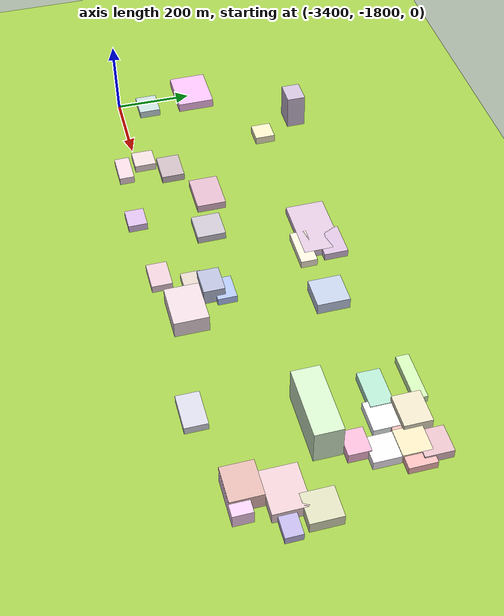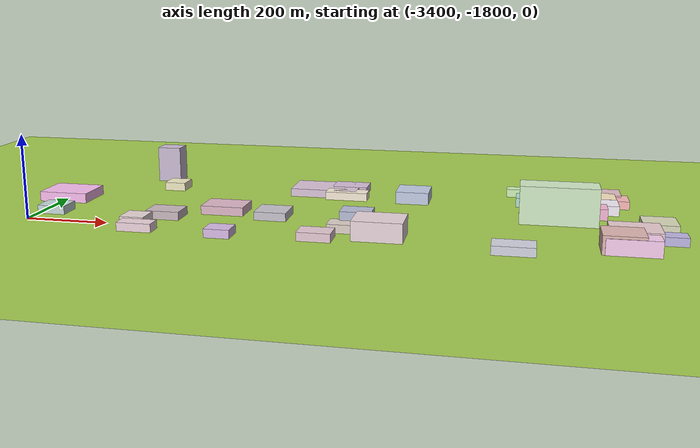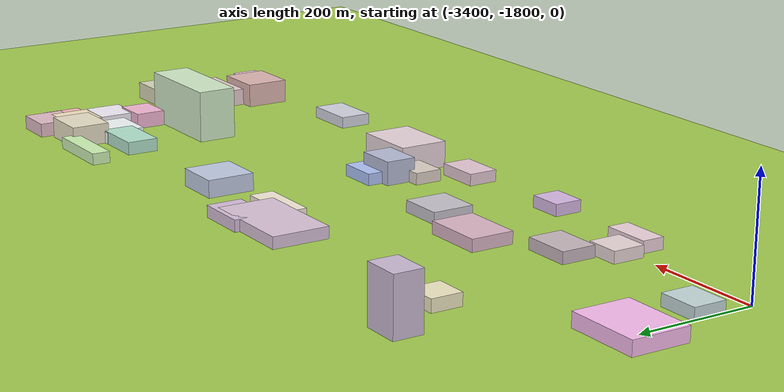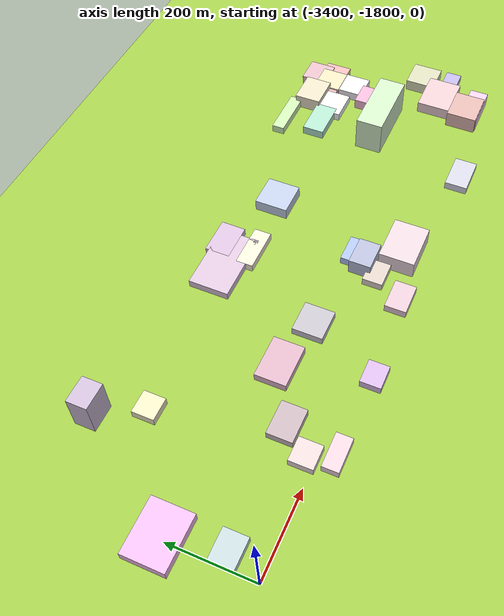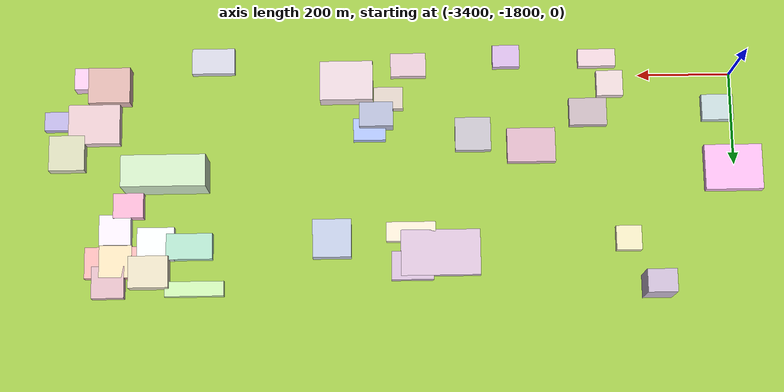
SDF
<sdf version="1.9">
 <world name="city_map">
  <model name="ground_plane">
   <static>1</static>
   <link name="link">
    <collision name="collision">
     <geometry><plane><normal>0 0 1</normal><size>11000 11000</size></plane></geometry>
    </collision>
    <visual name="visual">
     <geometry><plane><normal>0 0 1</normal><size>11000 11000</size></plane></geometry>
     <material>
      <ambient>0.551 0.712 0.210 1</ambient>
      <diffuse>0.651 0.812 0.310 1</diffuse>
      <specular>0.1 0.1 0.05 1</specular>
     </material>
    </visual>
   </link>
  </model>
  <model name="building_916570809">
   <static>1</static>
   <pose>-2763.185209973653 -1413.792203624471 10.0 0 0 0</pose>
   <link name="link">
    <collision name="collision">
     <geometry><box><size>169.5525000001865 97.91643936784145 20</size></box></geometry>
    </collision>
    <visual name="visual">
     <cast_shadows>false</cast_shadows>
     <geometry><box><size>169.5525000001865 97.91643936784145 20</size></box></geometry>
     <material>
      <ambient>0.775 0.683 0.771 1</ambient>
      <diffuse>0.875 0.783 0.871 1</diffuse>
      <specular>0.262 0.235 0.261 1</specular>
      <emissive>0.01 0.01 0.01 1</emissive>
     </material>
    </visual>
   </link>
  </model>
  <model name="building_678074171">
   <static>1</static>
   <pose>-2180.099157826956 -1585.6578494850173 45.0 0 0 0</pose>
   <link name="link">
    <collision name="collision">
     <geometry><box><size>178.74330000032757 67.90106861911882 90.0</size></box></geometry>
    </collision>
    <visual name="visual">
     <cast_shadows>false</cast_shadows>
     <geometry><box><size>178.74330000032757 67.90106861911882 90.0</size></box></geometry>
     <material>
      <ambient>0.739 0.842 0.698 1</ambient>
      <diffuse>0.839 0.942 0.798 1</diffuse>
      <specular>0.252 0.283 0.239 1</specular>
      <emissive>0.01 0.01 0.01 1</emissive>
     </material>
    </visual>
   </link>
  </model>
  <model name="building_732518532">
   <static>1</static>
   <pose>-3395.6030817666274 -1589.0654685565828 12.0 0 0 0</pose>
   <link name="link">
    <collision name="collision">
     <geometry><box><size>123.65551394359335 97.87980000021435 24.0</size></box></geometry>
    </collision>
    <visual name="visual">
     <cast_shadows>false</cast_shadows>
     <geometry><box><size>123.65551394359335 97.87980000021435 24.0</size></box></geometry>
     <material>
      <ambient>0.896 0.656 0.855 1</ambient>
      <diffuse>0.996 0.756 0.955 1</diffuse>
      <specular>0.299 0.227 0.287 1</specular>
      <emissive>0.01 0.01 0.01 1</emissive>
     </material>
    </visual>
   </link>
  </model>
  <model name="building_123817123">
   <static>1</static>
   <pose>-2090.679912394041 -1401.6782501234009 10.0 0 0 0</pose>
   <link name="link">
    <collision name="collision">
     <geometry><box><size>168.49800000048276 66.93280965089853 20</size></box></geometry>
    </collision>
    <visual name="visual">
     <cast_shadows>false</cast_shadows>
     <geometry><box><size>168.49800000048276 66.93280965089853 20</size></box></geometry>
     <material>
      <ambient>0.894 0.641 0.638 1</ambient>
      <diffuse>0.994 0.741 0.738 1</diffuse>
      <specular>0.298 0.222 0.222 1</specular>
      <emissive>0.01 0.01 0.01 1</emissive>
     </material>
    </visual>
   </link>
  </model>
  <model name="building_702693433">
   <static>1</static>
   <pose>-2566.1914712444086 -1787.3159141345893 22.5 0 0 0</pose>
   <link name="link">
    <collision name="collision">
     <geometry><box><size>113.79719999930415 85.56619863056683 45.0</size></box></geometry>
    </collision>
    <visual name="visual">
     <cast_shadows>false</cast_shadows>
     <geometry><box><size>113.79719999930415 85.56619863056683 45.0</size></box></geometry>
     <material>
      <ambient>0.829 0.756 0.780 1</ambient>
      <diffuse>0.929 0.856 0.880 1</diffuse>
      <specular>0.279 0.257 0.264 1</specular>
      <emissive>0.01 0.01 0.01 1</emissive>
     </material>
    </visual>
   </link>
  </model>
  <model name="building_30193992">
   <static>1</static>
   <pose>-2022.3991740174558 -1701.6657354087788 15.0 0 0 0</pose>
   <link name="link">
    <collision name="collision">
     <geometry><box><size>110.61149999993347 85.95659585977337 30.0</size></box></geometry>
    </collision>
    <visual name="visual">
     <cast_shadows>false</cast_shadows>
     <geometry><box><size>110.61149999993347 85.95659585977337 30.0</size></box></geometry>
     <material>
      <ambient>0.830 0.716 0.732 1</ambient>
      <diffuse>0.930 0.816 0.832 1</diffuse>
      <specular>0.279 0.245 0.250 1</specular>
      <emissive>0.01 0.01 0.01 1</emissive>
     </material>
    </visual>
   </link>
  </model>
  <model name="building_358701429">
   <static>1</static>
   <pose>-2962.48862184741 -1644.5084720194768 10.5 0 0 0</pose>
   <link name="link">
    <collision name="collision">
     <geometry><box><size>103.78586872930738 74.458800000194 21.0</size></box></geometry>
    </collision>
    <visual name="visual">
     <cast_shadows>false</cast_shadows>
     <geometry><box><size>103.78586872930738 74.458800000194 21.0</size></box></geometry>
     <material>
      <ambient>0.782 0.630 0.693 1</ambient>
      <diffuse>0.882 0.730 0.793 1</diffuse>
      <specular>0.265 0.219 0.238 1</specular>
      <emissive>0.01 0.01 0.01 1</emissive>
     </material>
    </visual>
   </link>
  </model>
  <model name="building_476492248">
   <static>1</static>
   <pose>-2055.2991965179094 -1784.80353456211 21.0 0 0 0</pose>
   <link name="link">
    <collision name="collision">
     <geometry><box><size>89.53259999967855 77.13384003926127 42.0</size></box></geometry>
    </collision>
    <visual name="visual">
     <cast_shadows>false</cast_shadows>
     <geometry><box><size>89.53259999967855 77.13384003926127 42.0</size></box></geometry>
     <material>
      <ambient>0.792 0.629 0.607 1</ambient>
      <diffuse>0.892 0.729 0.707 1</diffuse>
      <specular>0.268 0.219 0.212 1</specular>
      <emissive>0.01 0.01 0.01 1</emissive>
     </material>
    </visual>
   </link>
  </model>
  <model name="building_484385181">
   <static>1</static>
   <pose>-2532.1843964126892 -1446.01324356454 15.0 0 0 0</pose>
   <link name="link">
    <collision name="collision">
     <geometry><box><size>82.0845000001853 81.85787047836386 30.0</size></box></geometry>
    </collision>
    <visual name="visual">
     <cast_shadows>false</cast_shadows>
     <geometry><box><size>82.0845000001853 81.85787047836386 30.0</size></box></geometry>
     <material>
      <ambient>0.673 0.715 0.809 1</ambient>
      <diffuse>0.773 0.815 0.909 1</diffuse>
      <specular>0.232 0.244 0.273 1</specular>
      <emissive>0.01 0.01 0.01 1</emissive>
     </material>
    </visual>
   </link>
  </model>
  <model name="building_143862770">
   <static>1</static>
   <pose>-1964.6781267011413 -1639.1702259771448 15.0 0 0 0</pose>
   <link name="link">
    <collision name="collision">
     <geometry><box><size>76.39020000068086 76.31385545373412 30.0</size></box></geometry>
    </collision>
    <visual name="visual">
     <cast_shadows>false</cast_shadows>
     <geometry><box><size>76.39020000068086 76.31385545373412 30.0</size></box></geometry>
     <material>
      <ambient>0.768 0.771 0.646 1</ambient>
      <diffuse>0.868 0.871 0.746 1</diffuse>
      <specular>0.260 0.261 0.224 1</specular>
      <emissive>0.01 0.01 0.01 1</emissive>
     </material>
    </visual>
   </link>
  </model>
  <model name="building_924618336">
   <static>1</static>
   <pose>-2143.733008949915 -1378.8610123893686 18.0 0 0 0</pose>
   <link name="link">
    <collision name="collision">
     <geometry><box><size>84.47826472248983 67.68779999993768 36.0</size></box></geometry>
    </collision>
    <visual name="visual">
     <cast_shadows>false</cast_shadows>
     <geometry><box><size>84.47826472248983 67.68779999993768 36.0</size></box></geometry>
     <material>
      <ambient>0.829 0.793 0.692 1</ambient>
      <diffuse>0.929 0.893 0.792 1</diffuse>
      <specular>0.279 0.268 0.238 1</specular>
      <emissive>0.01 0.01 0.01 1</emissive>
     </material>
    </visual>
   </link>
  </model>
  <model name="building_706960398">
   <static>1</static>
   <pose>-2837.494445981347 -1670.8522051327654 10.0 0 0 0</pose>
   <link name="link">
    <collision name="collision">
     <geometry><box><size>76.80089999995943 72.56479748220377 20</size></box></geometry>
    </collision>
    <visual name="visual">
     <cast_shadows>false</cast_shadows>
     <geometry><box><size>76.80089999995943 72.56479748220377 20</size></box></geometry>
     <material>
      <ambient>0.694 0.675 0.711 1</ambient>
      <diffuse>0.794 0.775 0.811 1</diffuse>
      <specular>0.238 0.232 0.243 1</specular>
      <emissive>0.01 0.01 0.01 1</emissive>
     </material>
    </visual>
   </link>
  </model>
  <model name="building_183841092">
   <static>1</static>
   <pose>-2156.8112996989053 -1440.5496832499439 10.5 0 0 0</pose>
   <link name="link">
    <collision name="collision">
     <geometry><box><size>79.00979999974567 70.42655605439312 21.0</size></box></geometry>
    </collision>
    <visual name="visual">
     <cast_shadows>false</cast_shadows>
     <geometry><box><size>79.00979999974567 70.42655605439312 21.0</size></box></geometry>
     <material>
      <ambient>0.875 0.896 0.899 1</ambient>
      <diffuse>0.975 0.996 0.999 1</diffuse>
      <specular>0.292 0.299 0.300 1</specular>
      <emissive>0.01 0.01 0.01 1</emissive>
     </material>
    </visual>
   </link>
  </model>
  <model name="building_3770503">
   <static>1</static>
   <pose>-2228.7291099106933 -1433.9382687801124 11.234582156804525 0 0 0</pose>
   <link name="link">
    <collision name="collision">
     <geometry><box><size>98.5680000003697 55.2520171775012 22.46916431360905</size></box></geometry>
    </collision>
    <visual name="visual">
     <cast_shadows>false</cast_shadows>
     <geometry><box><size>98.5680000003697 55.2520171775012 22.46916431360905</size></box></geometry>
     <material>
      <ambient>0.614 0.804 0.719 1</ambient>
      <diffuse>0.714 0.904 0.819 1</diffuse>
      <specular>0.214 0.271 0.246 1</specular>
      <emissive>0.01 0.01 0.01 1</emissive>
     </material>
    </visual>
   </link>
  </model>
  <model name="building_335801725">
   <static>1</static>
   <pose>-2702.9075903987077 -1386.5013547929682 10.0 0 0 0</pose>
   <link name="link">
    <collision name="collision">
     <geometry><box><size>89.35499999996921 60.64270263967063 20</size></box></geometry>
    </collision>
    <visual name="visual">
     <cast_shadows>false</cast_shadows>
     <geometry><box><size>89.35499999996921 60.64270263967063 20</size></box></geometry>
     <material>
      <ambient>0.761 0.663 0.773 1</ambient>
      <diffuse>0.861 0.763 0.873 1</diffuse>
      <specular>0.258 0.229 0.262 1</specular>
      <emissive>0.01 0.01 0.01 1</emissive>
     </material>
    </visual>
   </link>
  </model>
  <model name="building_576231843">
   <static>1</static>
   <pose>-2036.5404577523661 -1801.2715513339133 18.0 0 0 0</pose>
   <link name="link">
    <collision name="collision">
     <geometry><box><size>114.01919999953236 46.979092058205175 36.0</size></box></geometry>
    </collision>
    <visual name="visual">
     <cast_shadows>false</cast_shadows>
     <geometry><box><size>114.01919999953236 46.979092058205175 36.0</size></box></geometry>
     <material>
      <ambient>0.888 0.718 0.851 1</ambient>
      <diffuse>0.988 0.818 0.951 1</diffuse>
      <specular>0.296 0.245 0.285 1</specular>
      <emissive>0.01 0.01 0.01 1</emissive>
     </material>
    </visual>
   </link>
  </model>
  <model name="building_239655193">
   <static>1</static>
   <pose>-2277.0466887041603 -1841.0686624120974 10.0 0 0 0</pose>
   <link name="link">
    <collision name="collision">
     <geometry><box><size>92.20883872703453 55.57770000038431 20</size></box></geometry>
    </collision>
    <visual name="visual">
     <cast_shadows>false</cast_shadows>
     <geometry><box><size>92.20883872703453 55.57770000038431 20</size></box></geometry>
     <material>
      <ambient>0.750 0.749 0.806 1</ambient>
      <diffuse>0.850 0.849 0.906 1</diffuse>
      <specular>0.255 0.255 0.272 1</specular>
      <emissive>0.01 0.01 0.01 1</emissive>
     </material>
    </visual>
   </link>
  </model>
  <model name="building_588970818">
   <static>1</static>
   <pose>-3087.213294062979 -1716.6815668267488 10.0 0 0 0</pose>
   <link name="link">
    <collision name="collision">
     <geometry><box><size>80.94337605241712 59.729099999998425 20</size></box></geometry>
    </collision>
    <visual name="visual">
     <cast_shadows>false</cast_shadows>
     <geometry><box><size>80.94337605241712 59.729099999998425 20</size></box></geometry>
     <material>
      <ambient>0.700 0.632 0.660 1</ambient>
      <diffuse>0.800 0.732 0.760 1</diffuse>
      <specular>0.240 0.220 0.228 1</specular>
      <emissive>0.01 0.01 0.01 1</emissive>
     </material>
    </visual>
   </link>
  </model>
  <model name="building_309502335">
   <static>1</static>
   <pose>-2072.356639383837 -1403.5004395801975 12.0 0 0 0</pose>
   <link name="link">
    <collision name="collision">
     <geometry><box><size>69.16409999983841 68.54091178756636 24.0</size></box></geometry>
    </collision>
    <visual name="visual">
     <cast_shadows>false</cast_shadows>
     <geometry><box><size>69.16409999983841 68.54091178756636 24.0</size></box></geometry>
     <material>
      <ambient>0.895 0.811 0.664 1</ambient>
      <diffuse>0.995 0.911 0.764 1</diffuse>
      <specular>0.299 0.273 0.229 1</specular>
      <emissive>0.01 0.01 0.01 1</emissive>
     </material>
    </visual>
   </link>
  </model>
  <model name="building_534269097">
   <static>1</static>
   <pose>-2057.109111771861 -1359.481351648256 12.0 0 0 0</pose>
   <link name="link">
    <collision name="collision">
     <geometry><box><size>69.18629999930914 68.38462186841338 24.0</size></box></geometry>
    </collision>
    <visual name="visual">
     <cast_shadows>false</cast_shadows>
     <geometry><box><size>69.18629999930914 68.38462186841338 24.0</size></box></geometry>
     <material>
      <ambient>0.805 0.656 0.692 1</ambient>
      <diffuse>0.905 0.756 0.792 1</diffuse>
      <specular>0.271 0.227 0.238 1</specular>
      <emissive>0.01 0.01 0.01 1</emissive>
     </material>
    </visual>
   </link>
  </model>
  <model name="building_219699486">
   <static>1</static>
   <pose>-2070.5213779512196 -1471.206740463376 12.0 0 0 0</pose>
   <link name="link">
    <collision name="collision">
     <geometry><box><size>67.86539999964702 65.25153250677045 24.0</size></box></geometry>
    </collision>
    <visual name="visual">
     <cast_shadows>false</cast_shadows>
     <geometry><box><size>67.86539999964702 65.25153250677045 24.0</size></box></geometry>
     <material>
      <ambient>0.879 0.851 0.894 1</ambient>
      <diffuse>0.979 0.951 0.994 1</diffuse>
      <specular>0.294 0.285 0.298 1</specular>
      <emissive>0.01 0.01 0.01 1</emissive>
     </material>
    </visual>
   </link>
  </model>
  <model name="building_134850002">
   <static>1</static>
   <pose>-2700.39989928988 -1459.5468310351669 10.0 0 0 0</pose>
   <link name="link">
    <collision name="collision">
     <geometry><box><size>105.02506185412908 41.64720000006383 20</size></box></geometry>
    </collision>
    <visual name="visual">
     <cast_shadows>false</cast_shadows>
     <geometry><box><size>105.02506185412908 41.64720000006383 20</size></box></geometry>
     <material>
      <ambient>0.887 0.838 0.757 1</ambient>
      <diffuse>0.987 0.938 0.857 1</diffuse>
      <specular>0.296 0.281 0.257 1</specular>
      <emissive>0.01 0.01 0.01 1</emissive>
     </material>
    </visual>
   </link>
  </model>
  <model name="building_156004372">
   <static>1</static>
   <pose>-2239.5710199428877 -1343.4217235163046 10.0 0 0 0</pose>
   <link name="link">
    <collision name="collision">
     <geometry><box><size>125.92949999990566 31.57766806020417 20</size></box></geometry>
    </collision>
    <visual name="visual">
     <cast_shadows>false</cast_shadows>
     <geometry><box><size>125.92949999990566 31.57766806020417 20</size></box></geometry>
     <material>
      <ambient>0.724 0.869 0.625 1</ambient>
      <diffuse>0.824 0.969 0.725 1</diffuse>
      <specular>0.247 0.291 0.218 1</specular>
      <emissive>0.01 0.01 0.01 1</emissive>
     </material>
    </visual>
   </link>
  </model>
  <model name="building_408723254">
   <static>1</static>
   <pose>-2700.0135094778825 -1826.671094964904 10.0 0 0 0</pose>
   <link name="link">
    <collision name="collision">
     <geometry><box><size>76.43459999962232 51.37114029870402 20</size></box></geometry>
    </collision>
    <visual name="visual">
     <cast_shadows>false</cast_shadows>
     <geometry><box><size>76.43459999962232 51.37114029870402 20</size></box></geometry>
     <material>
      <ambient>0.819 0.706 0.749 1</ambient>
      <diffuse>0.919 0.806 0.849 1</diffuse>
      <specular>0.276 0.242 0.255 1</specular>
      <emissive>0.01 0.01 0.01 1</emissive>
     </material>
    </visual>
   </link>
  </model>
  <model name="building_934895855">
   <static>1</static>
   <pose>-2629.5603401470357 -1712.9399863808974 20.239348406298276 0 0 0</pose>
   <link name="link">
    <collision name="collision">
     <geometry><box><size>72.58556772886928 53.12460000011043 40.47869681259655</size></box></geometry>
    </collision>
    <visual name="visual">
     <cast_shadows>false</cast_shadows>
     <geometry><box><size>72.58556772886928 53.12460000011043 40.47869681259655</size></box></geometry>
     <material>
      <ambient>0.631 0.652 0.754 1</ambient>
      <diffuse>0.731 0.752 0.854 1</diffuse>
      <specular>0.219 0.226 0.256 1</specular>
      <emissive>0.01 0.01 0.01 1</emissive>
     </material>
    </visual>
   </link>
  </model>
  <model name="building_493353606">
   <static>1</static>
   <pose>-3367.7437743038845 -1722.199606454562 10.0 0 0 0</pose>
   <link name="link">
    <collision name="collision">
     <geometry><box><size>67.81567898281754 56.09940000017133 20</size></box></geometry>
    </collision>
    <visual name="visual">
     <cast_shadows>false</cast_shadows>
     <geometry><box><size>67.81567898281754 56.09940000017133 20</size></box></geometry>
     <material>
      <ambient>0.691 0.764 0.771 1</ambient>
      <diffuse>0.791 0.864 0.871 1</diffuse>
      <specular>0.237 0.259 0.261 1</specular>
      <emissive>0.01 0.01 0.01 1</emissive>
     </material>
    </visual>
   </link>
  </model>
  <model name="building_964164178">
   <static>1</static>
   <pose>-2098.537000626131 -1523.0850947188271 13.5 0 0 0</pose>
   <link name="link">
    <collision name="collision">
     <geometry><box><size>64.49100000043728 53.273445046582815 27.0</size></box></geometry>
    </collision>
    <visual name="visual">
     <cast_shadows>false</cast_shadows>
     <geometry><box><size>64.49100000043728 53.273445046582815 27.0</size></box></geometry>
     <material>
      <ambient>0.881 0.634 0.748 1</ambient>
      <diffuse>0.981 0.734 0.848 1</diffuse>
      <specular>0.294 0.220 0.255 1</specular>
      <emissive>0.01 0.01 0.01 1</emissive>
     </material>
    </visual>
   </link>
  </model>
  <model name="building_885935157">
   <static>1</static>
   <pose>-2614.7597555978755 -1684.1747455798559 10.0 0 0 0</pose>
   <link name="link">
    <collision name="collision">
     <geometry><box><size>69.49739207093523 48.251699999951825 20</size></box></geometry>
    </collision>
    <visual name="visual">
     <cast_shadows>false</cast_shadows>
     <geometry><box><size>69.49739207093523 48.251699999951825 20</size></box></geometry>
     <material>
      <ambient>0.604 0.679 0.892 1</ambient>
      <diffuse>0.704 0.779 0.992 1</diffuse>
      <specular>0.211 0.234 0.298 1</specular>
      <emissive>0.01 0.01 0.01 1</emissive>
     </material>
    </visual>
   </link>
  </model>
  <model name="building_723643002">
   <static>1</static>
   <pose>-1953.1069832423057 -1711.8047535704527 10.0 0 0 0</pose>
   <link name="link">
    <collision name="collision">
     <geometry><box><size>78.03300000016122 40.92431188429512 20</size></box></geometry>
    </collision>
    <visual name="visual">
     <cast_shadows>false</cast_shadows>
     <geometry><box><size>78.03300000016122 40.92431188429512 20</size></box></geometry>
     <material>
      <ambient>0.661 0.626 0.813 1</ambient>
      <diffuse>0.761 0.726 0.913 1</diffuse>
      <specular>0.228 0.218 0.274 1</specular>
      <emissive>0.01 0.01 0.01 1</emissive>
     </material>
    </visual>
   </link>
  </model>
  <model name="building_853502593">
   <static>1</static>
   <pose>-3136.5665577841582 -1779.4873580695273 10.0 0 0 0</pose>
   <link name="link">
    <collision name="collision">
     <geometry><box><size>57.120600000274635 55.84360602390795 20</size></box></geometry>
    </collision>
    <visual name="visual">
     <cast_shadows>false</cast_shadows>
     <geometry><box><size>57.120600000274635 55.84360602390795 20</size></box></geometry>
     <material>
      <ambient>0.836 0.761 0.763 1</ambient>
      <diffuse>0.936 0.861 0.863 1</diffuse>
      <specular>0.281 0.258 0.259 1</specular>
      <emissive>0.01 0.01 0.01 1</emissive>
     </material>
    </visual>
   </link>
  </model>
  <model name="building_4821603">
   <static>1</static>
   <pose>-3110.49241736418 -1837.0051494146003 10.0 0 0 0</pose>
   <link name="link">
    <collision name="collision">
     <geometry><box><size>81.11879999994187 38.4321855607191 20</size></box></geometry>
    </collision>
    <visual name="visual">
     <cast_shadows>false</cast_shadows>
     <geometry><box><size>81.11879999994187 38.4321855607191 20</size></box></geometry>
     <material>
      <ambient>0.849 0.745 0.778 1</ambient>
      <diffuse>0.949 0.845 0.878 1</diffuse>
      <specular>0.285 0.254 0.263 1</specular>
      <emissive>0.01 0.01 0.01 1</emissive>
     </material>
    </visual>
   </link>
  </model>
  <model name="building_28986298">
   <static>1</static>
   <pose>-2655.923959162301 -1752.8694106311625 10.0 0 0 0</pose>
   <link name="link">
    <collision name="collision">
     <geometry><box><size>63.235058641377684 48.37379999980129 20</size></box></geometry>
    </collision>
    <visual name="visual">
     <cast_shadows>false</cast_shadows>
     <geometry><box><size>63.235058641377684 48.37379999980129 20</size></box></geometry>
     <material>
      <ambient>0.785 0.732 0.694 1</ambient>
      <diffuse>0.885 0.832 0.794 1</diffuse>
      <specular>0.266 0.249 0.238 1</specular>
      <emissive>0.01 0.01 0.01 1</emissive>
     </material>
    </visual>
   </link>
  </model>
  <model name="building_96941403">
   <static>1</static>
   <pose>-3220.5368871719606 -1336.1259738605836 46.506999229876634 0 0 0</pose>
   <link name="link">
    <collision name="collision">
     <geometry><box><size>62.412149486630945 48.69570000040824 93.01399845975327</size></box></geometry>
    </collision>
    <visual name="visual">
     <cast_shadows>false</cast_shadows>
     <geometry><box><size>62.412149486630945 48.69570000040824 93.01399845975327</size></box></geometry>
     <material>
      <ambient>0.713 0.651 0.750 1</ambient>
      <diffuse>0.813 0.751 0.850 1</diffuse>
      <specular>0.244 0.225 0.255 1</specular>
      <emissive>0.01 0.01 0.01 1</emissive>
     </material>
    </visual>
   </link>
  </model>
  <model name="building_764471492">
   <static>1</static>
   <pose>-3164.7447545939935 -1438.831216201758 10.5 0 0 0</pose>
   <link name="link">
    <collision name="collision">
     <geometry><box><size>54.28567368891159 52.4475000000848 21.0</size></box></geometry>
    </collision>
    <visual name="visual">
     <cast_shadows>false</cast_shadows>
     <geometry><box><size>54.28567368891159 52.4475000000848 21.0</size></box></geometry>
     <material>
      <ambient>0.863 0.831 0.681 1</ambient>
      <diffuse>0.963 0.931 0.781 1</diffuse>
      <specular>0.289 0.279 0.234 1</specular>
      <emissive>0.01 0.01 0.01 1</emissive>
     </material>
    </visual>
   </link>
  </model>
  <model name="building_672424047">
   <static>1</static>
   <pose>-2913.0969514769317 -1843.243994169919 10.0 0 0 0</pose>
   <link name="link">
    <collision name="collision">
     <geometry><box><size>58.53029999939707 48.57411258305291 20</size></box></geometry>
    </collision>
    <visual name="visual">
     <cast_shadows>false</cast_shadows>
     <geometry><box><size>58.53029999939707 48.57411258305291 20</size></box></geometry>
     <material>
      <ambient>0.761 0.641 0.817 1</ambient>
      <diffuse>0.861 0.741 0.917 1</diffuse>
      <specular>0.258 0.222 0.275 1</specular>
      <emissive>0.01 0.01 0.01 1</emissive>
     </material>
    </visual>
   </link>
  </model>
 </world>
</sdf>
